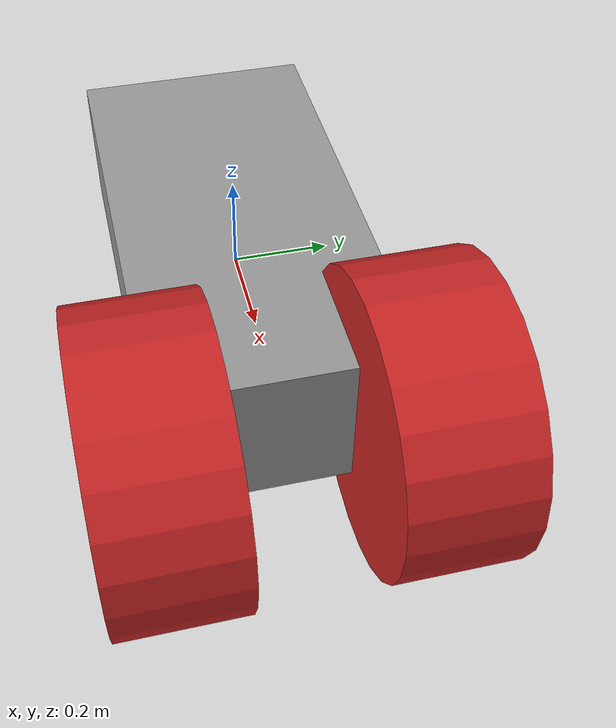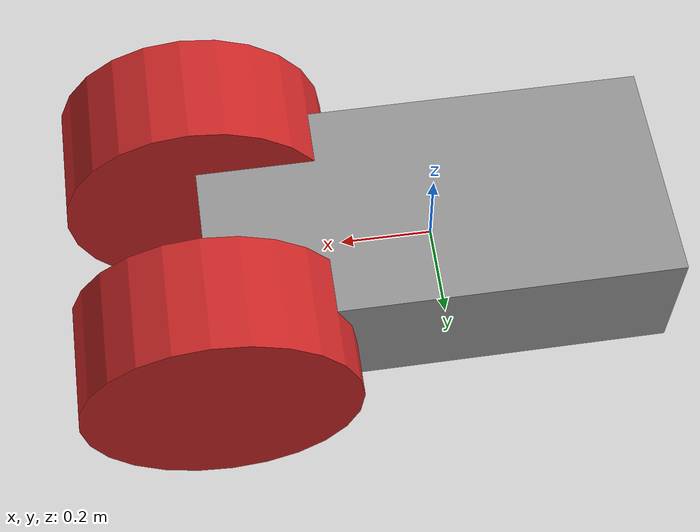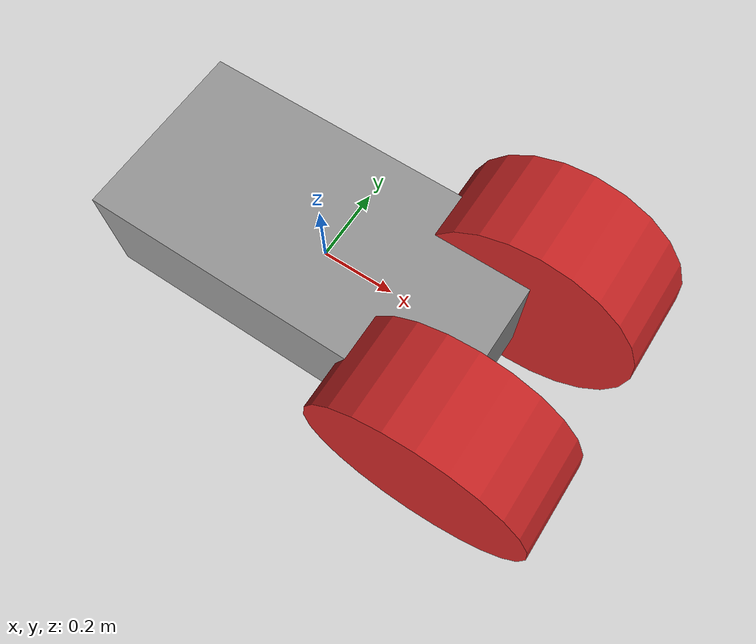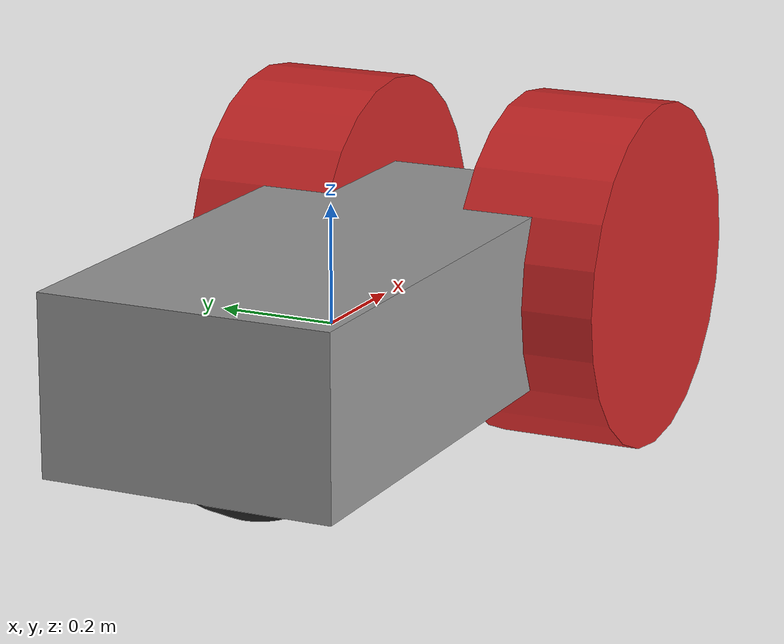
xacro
<?xml version="1.0"?>
<robot xmlns:xacro="http://www.ros.org/wiki/xacro" name="assignment6_rover_flipped">

  <!-- parameters -->
  <xacro:property name="body_width"  value="0.5"/>
  <xacro:property name="body_length" value="1.0"/>
  <xacro:property name="body_height" value="0.3"/>

  <xacro:property name="front_wheel_radius" value="0.3"/>
  <xacro:property name="front_wheel_length" value="0.25"/>
  <xacro:property name="caster_radius" value="0.2"/>

  <xacro:property name="z_bottom" value="${- body_height/2.0}"/>

  <!-- positions -->
  <xacro:property name="front_x" value="${ body_length/2.0 }"/>
  <xacro:property name="front_y" value="${ body_width/2.0 }"/>
  <xacro:property name="front_z" value="0.0"/>                  <!-- 수직 중앙 -->
  <xacro:property name="caster_x" value="${ -body_length/2.0 + 0.25 }"/>
  <xacro:property name="caster_y" value="0.0"/>
  <xacro:property name="caster_z" value="${ z_bottom + caster_radius }"/> <!-- 하단 접촉 -->

  <!-- 색상 -->
  <gazebo reference="base_link"><material>Gazebo/Gray</material></gazebo>
  <gazebo reference="front_left_wheel"><material>Gazebo/Red</material></gazebo>
  <gazebo reference="front_right_wheel"><material>Gazebo/Red</material></gazebo>
  <gazebo reference="rear_center_caster"><material>Gazebo/Black</material></gazebo>

  <!-- world_link: 전체 180도 회전 -->
  <link name="world_link"/>
  <joint name="flip_joint" type="fixed">
    <parent link="world_link"/>
    <child link="base_link"/>
    <origin xyz="0 0 0" rpy="3.1416 0 0"/>   <!-- X축 기준 180° 뒤집기 -->
  </joint>

  <!-- chassis -->
  <link name="base_link">
    <visual>
      <geometry><box size="${body_length} ${body_width} ${body_height}"/></geometry>
    </visual>
    <collision>
      <geometry><box size="${body_length} ${body_width} ${body_height}"/></geometry>
    </collision>
    <inertial>
      <mass value="15"/>
      <inertia ixx="0.10" iyy="0.10" izz="0.10" ixy="0" ixz="0" iyz="0"/>
    </inertial>
  </link>

  <!-- front wheel macro -->
  <xacro:macro name="front_wheel" params="name x y z radius length">
    <link name="${name}">
      <visual>
        <geometry><cylinder radius="${radius}" length="${length}"/></geometry>
        <origin rpy="1.5707 0 0"/>
      </visual>
      <collision>
        <geometry><cylinder radius="${radius}" length="${length}"/></geometry>
        <origin rpy="1.5707 0 0"/>
      </collision>
      <inertial>
        <mass value="1.0"/>
        <inertia ixx="0.01" iyy="0.01" izz="0.01" ixy="0" ixz="0" iyz="0"/>
      </inertial>
    </link>
    <joint name="${name}_joint" type="continuous">
      <parent link="base_link"/>
      <child  link="${name}"/>
      <origin xyz="${x} ${y} ${z}" rpy="0 0 0"/>
      <axis xyz="0 1 0"/>
    </joint>
  </xacro:macro>

  <xacro:front_wheel name="front_left_wheel"
                     x="${front_x}" y="${ front_y}" z="${front_z}"
                     radius="${front_wheel_radius}" length="${front_wheel_length}"/>
  <xacro:front_wheel name="front_right_wheel"
                     x="${front_x}" y="${-front_y}" z="${front_z}"
                     radius="${front_wheel_radius}" length="${front_wheel_length}"/>

  <!-- caster -->
  <link name="rear_center_caster">
    <visual><geometry><sphere radius="${caster_radius}"/></geometry></visual>
    <collision><geometry><sphere radius="${caster_radius}"/></geometry></collision>
    <inertial>
      <mass value="0.3"/>
      <inertia ixx="0.005" iyy="0.005" izz="0.005" ixy="0" ixz="0" iyz="0"/>
    </inertial>
  </link>
  <joint name="rear_center_caster_joint" type="continuous">
    <parent link="base_link"/>
    <child  link="rear_center_caster"/>
    <origin xyz="${caster_x} ${caster_y} ${caster_z}" rpy="0 0 0"/>
    <axis xyz="0 0 1"/>
  </joint>

</robot>
